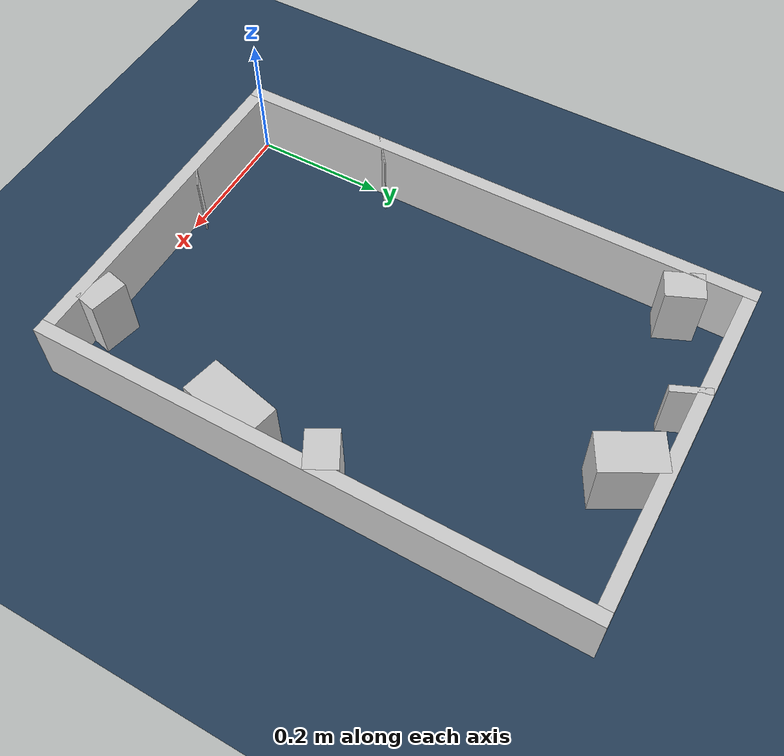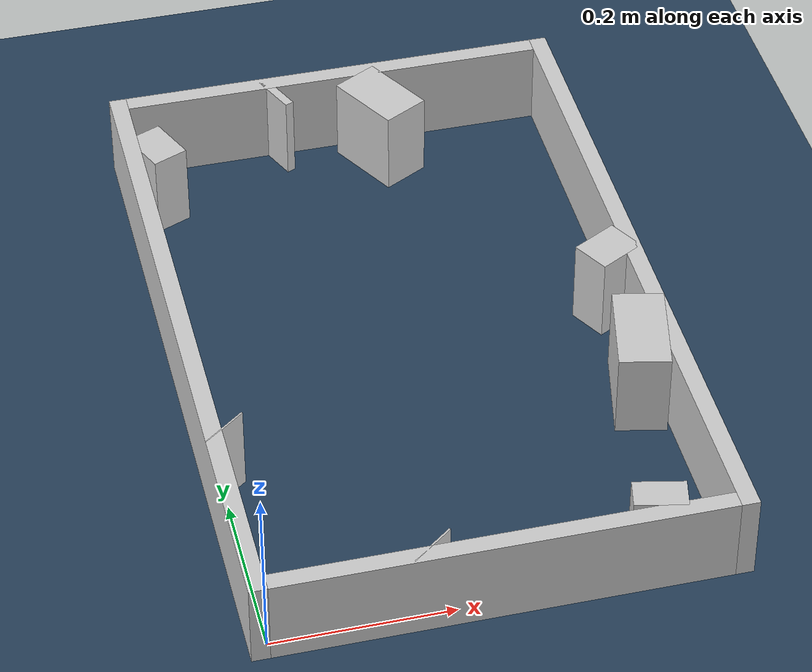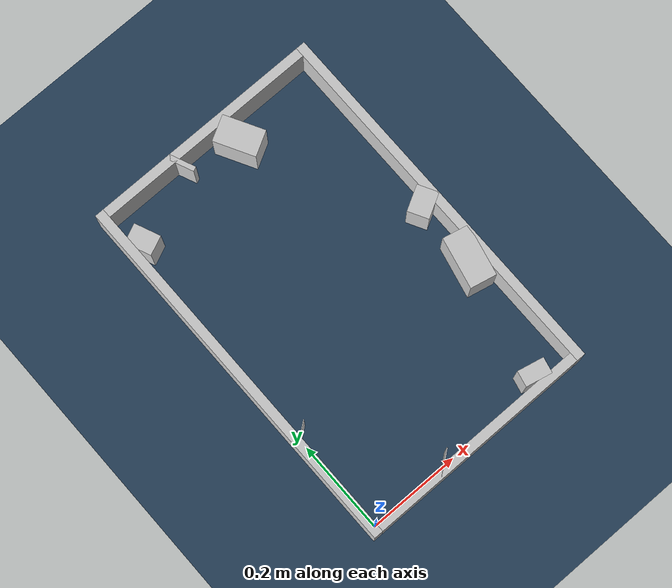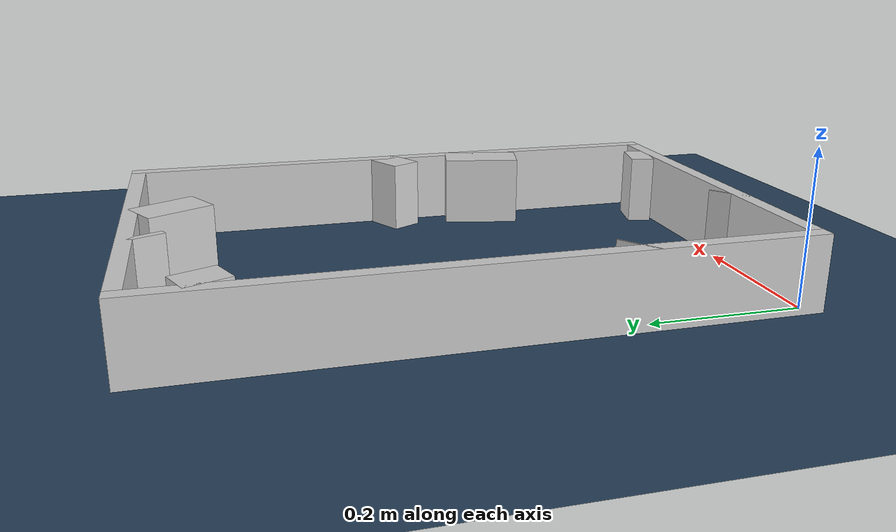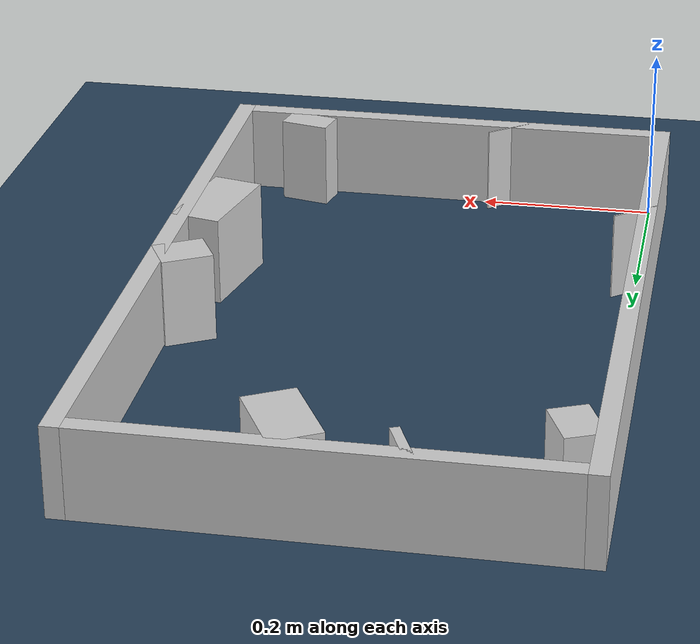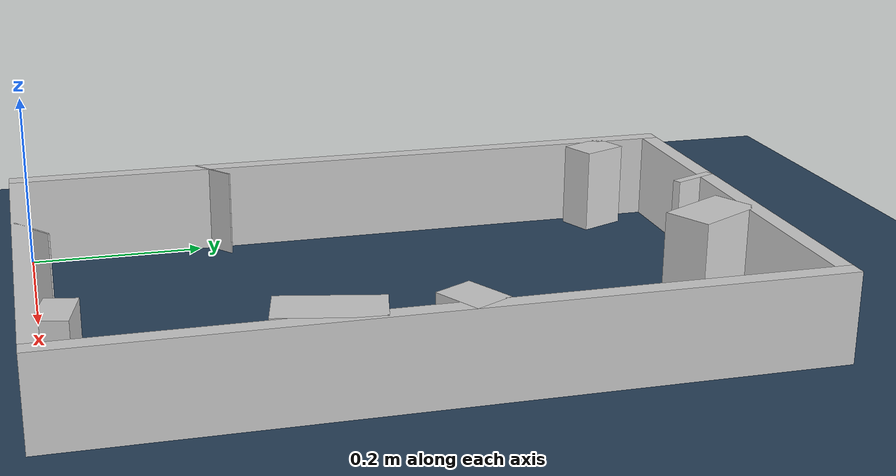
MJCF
<?xml version="1.0" ?>
<mujoco model="generated_real_template">
  <compiler angle="degree"/>
  <option timestep="0.002" integrator="implicitfast" iterations="100" cone="elliptic"/>
  <default>
    <geom density="1"/>
  </default>
  <asset>
    <texture builtin="gradient" height="3072" rgb1="0.3 0.5 0.7" rgb2="0 0 0" type="skybox" width="512"/>
    <texture builtin="checker" height="300" mark="edge" markrgb="0.8 0.8 0.8" name="groundplane" rgb1="0.2 0.3 0.4" rgb2="0.1 0.2 0.3" type="2d" width="300"/>
    <material name="groundplane" reflectance="0.2" texrepeat="5 5" texture="groundplane" texuniform="true"/>
  </asset>
  <worldbody>
    <light dir="0 0 -1" directional="true" pos="0 0 1.5"/>
    <geom name="floor" type="plane" condim="4" friction="0.5 0.005 0.001" material="groundplane" size="0 0 0.05"/>
    <body name="walls">
      <geom name="wall_boundary_left" type="box" condim="4" friction="1.0 0.005 0.0001" rgba="0.8 0.8 0.8 1" pos="-0.010000 0.387500 0.050000" euler="0 0 0.000000" size="0.010000 0.407500 0.050000"/>
      <geom name="wall_boundary_right" type="box" condim="4" friction="1.0 0.005 0.0001" rgba="0.8 0.8 0.8 1" pos="0.500000 0.387500 0.050000" euler="0 0 0.000000" size="0.010000 0.407500 0.050000"/>
      <geom name="wall_boundary_bottom" type="box" condim="4" friction="1.0 0.005 0.0001" rgba="0.8 0.8 0.8 1" pos="0.245000 -0.010000 0.050000" euler="0 0 0.000000" size="0.245000 0.010000 0.050000"/>
      <geom name="wall_boundary_top" type="box" condim="4" friction="1.0 0.005 0.0001" rgba="0.8 0.8 0.8 1" pos="0.245000 0.785000 0.050000" euler="0 0 0.000000" size="0.245000 0.010000 0.050000"/>
      <geom name="wall_inner_1_1" type="box" condim="4" friction="1.0 0.005 0.0001" rgba="0.8 0.8 0.8 1" pos="0.292319 0.735088 0.050000" euler="0 0 -61.286687" size="0.045508 0.028500 0.050000"/>
      <geom name="wall_inner_1_2" type="box" condim="4" friction="1.0 0.005 0.0001" rgba="0.8 0.8 0.8 1" pos="0.473976 0.403468 0.050000" euler="0 0 -61.286687" size="0.022954 0.028500 0.050000"/>
      <geom name="wall_inner_2_1" type="box" condim="4" friction="1.0 0.005 0.0001" rgba="0.8 0.8 0.8 1" pos="0.173208 0.766777 0.050000" euler="0 0 -156.655127" size="0.005186 0.028500 0.050000"/>
      <geom name="wall_inner_2_2" type="box" condim="4" friction="1.0 0.005 0.0001" rgba="0.8 0.8 0.8 1" pos="0.019588 0.700475 0.050000" euler="0 0 -156.655127" size="0.021334 0.028500 0.050000"/>
      <geom name="wall_inner_3_1" type="box" condim="4" friction="1.0 0.005 0.0001" rgba="0.8 0.8 0.8 1" pos="0.172261 0.000814 0.050000" euler="0 0 127.952694" size="0.001033 0.028500 0.050000"/>
      <geom name="wall_inner_3_2" type="box" condim="4" friction="1.0 0.005 0.0001" rgba="0.8 0.8 0.8 1" pos="0.003048 0.217766 0.050000" euler="0 0 127.952694" size="0.000934 0.028500 0.050000"/>
      <geom name="wall_inner_4_1" type="box" condim="4" friction="1.0 0.005 0.0001" rgba="0.8 0.8 0.8 1" pos="0.470095 0.264559 0.050000" euler="0 0 -102.579586" size="0.055503 0.028500 0.050000"/>
      <geom name="wall_inner_4_2" type="box" condim="4" friction="1.0 0.005 0.0001" rgba="0.8 0.8 0.8 1" pos="0.414795 0.016747 0.050000" euler="0 0 -102.579586" size="0.017159 0.028500 0.050000"/>
    </body>
  </worldbody>
</mujoco>
